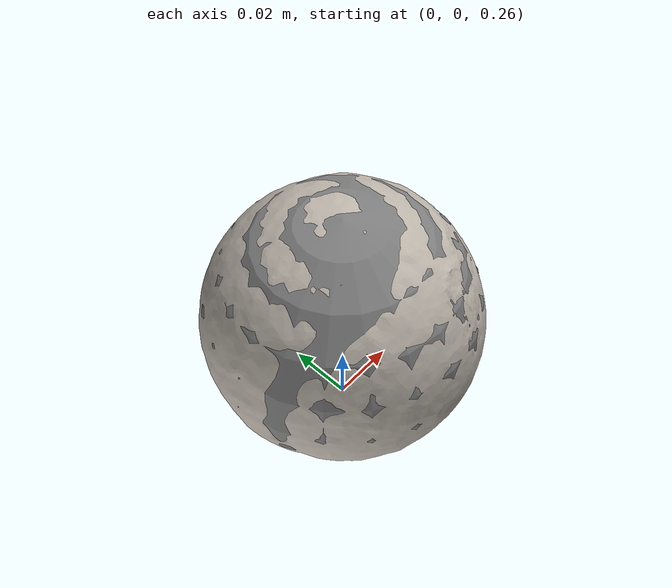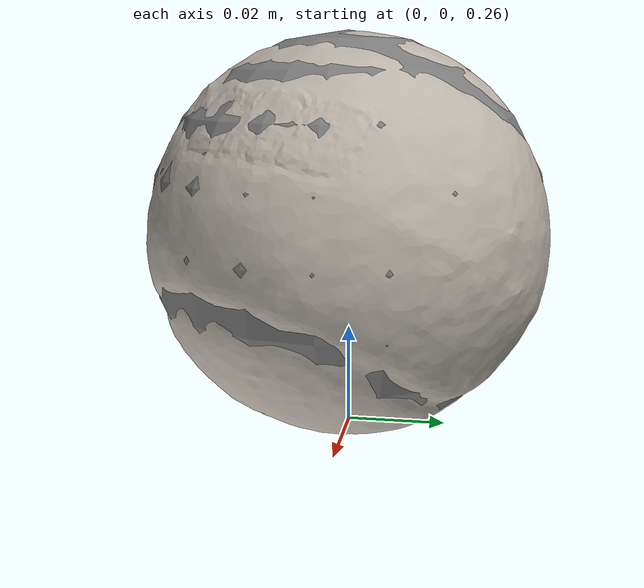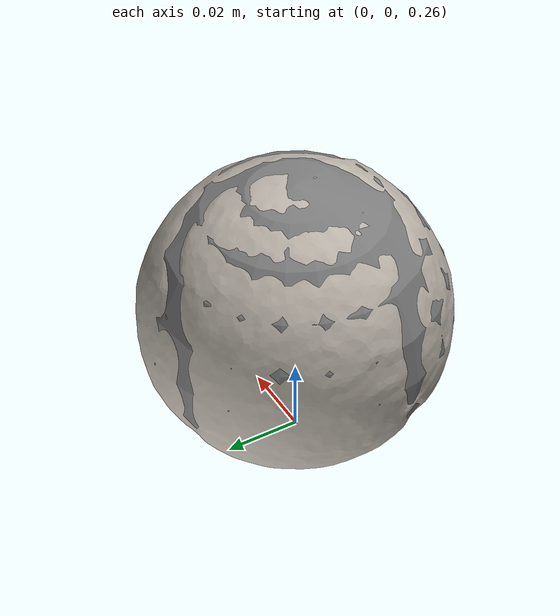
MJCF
<mujoco>
  <asset>
    <texture name="tennis_tex" type="2d" file="assets/ycb/056_tennis_ball/google_16k/texture_map.png"/>
    <material name="tennis_mat" texture="tennis_tex"/>

    <!-- meshdir is defined in allegro_right.xml -->
    <mesh name="tennis_ball" file="ycb/056_tennis_ball/google_16k/textured.obj" scale="1.1935 1.1935 1.1935"/>
  </asset>

  <worldbody>
    <body name="ball" pos="0 0 0.3">
      <freejoint name="ball_joint"/>
      <geom name="ball" type="sphere" size="0.04" mass="0.05" condim="6"
            friction="2.0 0.05 0.01"
            solimp="0.9 0.95 0.001" solref="0.02 1"/>
      <geom name="ball_visual" type="mesh" mesh="tennis_ball" material="tennis_mat" contype="0" conaffinity="0" group="1"/>
      <inertial pos="0 0 0" mass="0.05" diaginertia="0.0001 0.0001 0.0001"/>
    </body>
  </worldbody>
</mujoco>
